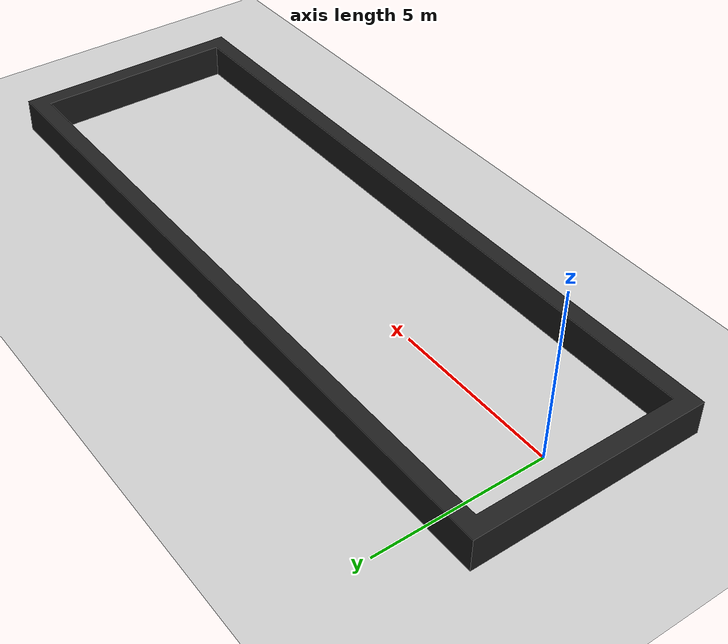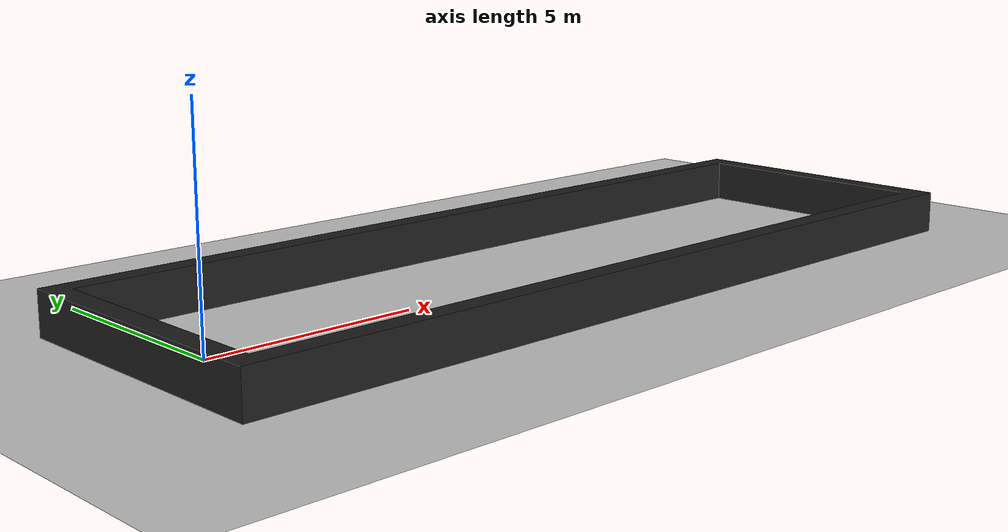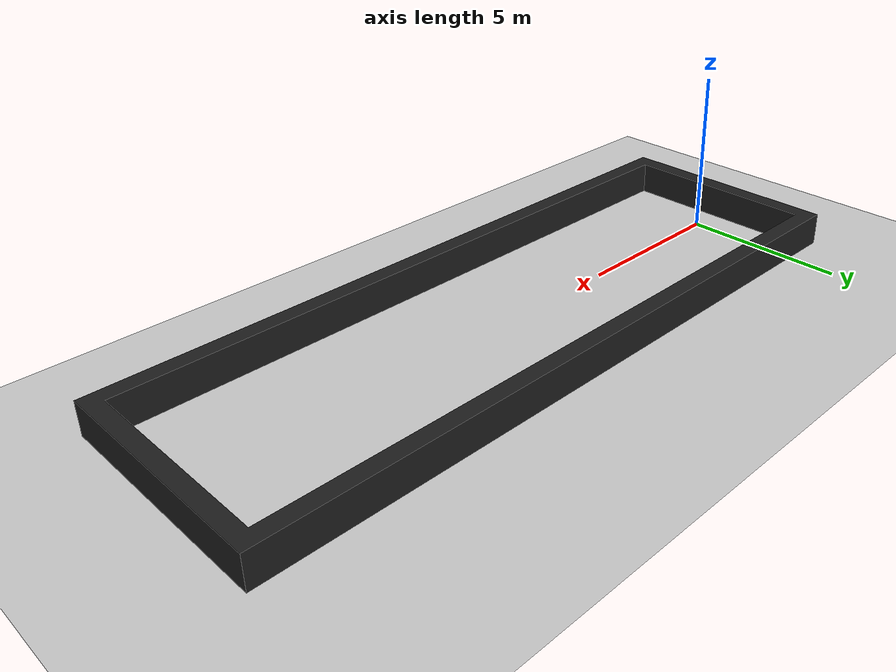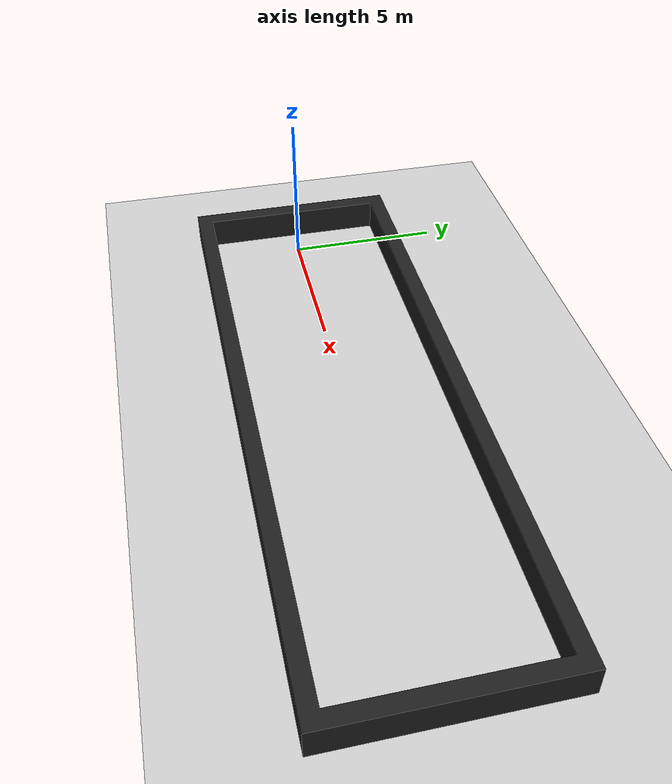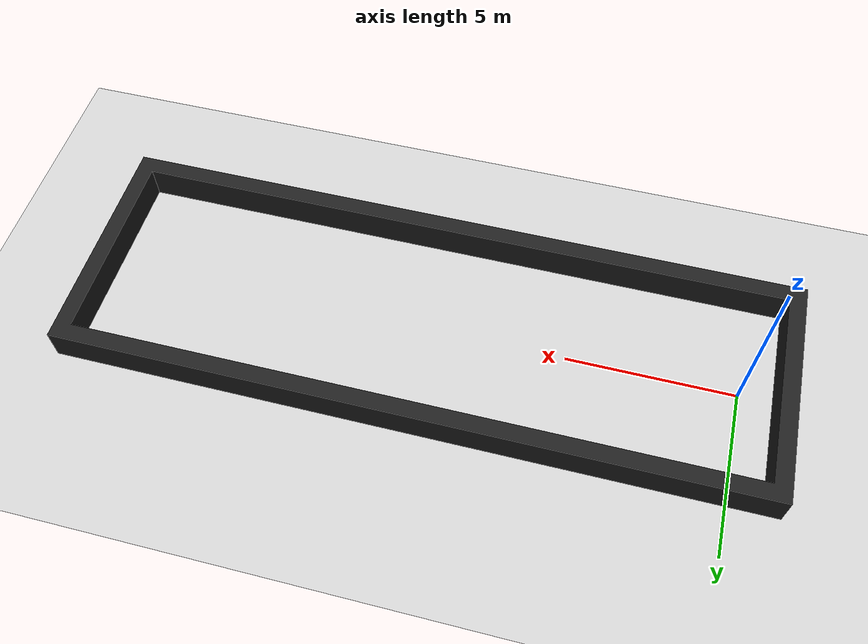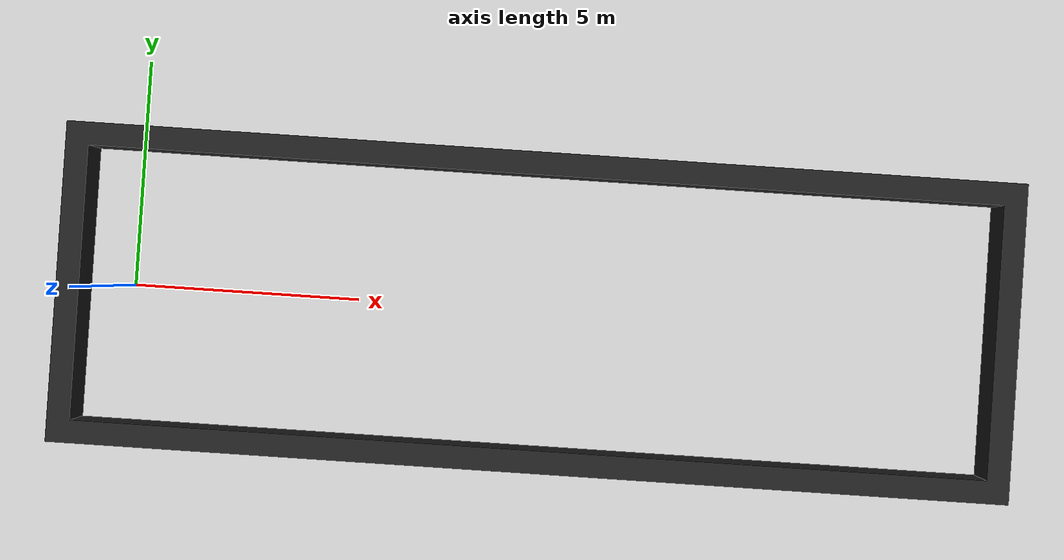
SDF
<?xml version="1.0"?>
<sdf version="1.6">
  <world name='default'>
    <!-- A global light source -->
    <include>
      <uri>model://sun</uri>
    </include>

    <!-- A ground plane -->
    <include>
      <uri>model://ground_plane</uri>
    </include>

    <physics type="ode">
      <real_time_update_rate>1000.0</real_time_update_rate>
      <max_step_size>0.001</max_step_size>
      <real_time_factor>1</real_time_factor>
      <ode>
        <solver>
          <type>quick</type>
          <iters>150</iters>
          <precon_iters>0</precon_iters>
          <sor>1.400000</sor>
          <use_dynamic_moi_rescaling>1</use_dynamic_moi_rescaling>
        </solver>
        <constraints>
          <cfm>0.00001</cfm>
          <erp>0.2</erp>
          <contact_max_correcting_vel>2000.000000</contact_max_correcting_vel>
          <contact_surface_layer>0.01000</contact_surface_layer>
        </constraints>
      </ode>
    </physics>

    <!-- Load model -->
    <include>
      <uri>model://turtlebot3_jp_world</uri>
    </include>

    <scene>
      <ambient>0.4 0.4 0.4 1</ambient>
      <background>0.7 0.7 0.7 1</background>
      <shadows>false</shadows>
    </scene>

    <gui fullscreen='0'>
      <camera name='user_camera'>
        <pose>0.0 0.0 17.0 0 1.5708 0</pose>
        <view_controller>orbit</view_controller>
      </camera>
    </gui>
  </world>
</sdf>

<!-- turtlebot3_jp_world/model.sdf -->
<sdf version='1.6'>
    <model name="wall">
    <static>true</static>
    <link name="walllink">

    <collision name="collision">
        <pose>9 0 0 0 0 -1.5708</pose>
        <geometry>
          <mesh>
            <uri>model://turtlebot3_jp_world/meshes/corridor_6x20.stl</uri>
            <scale>1 1 1</scale>
          </mesh>
        </geometry>
        <max_contacts>10</max_contacts>
        <surface>
          <bounce/>
          <friction>
            <ode/>
          </friction>
          <contact>
            <ode/>
          </contact>
        </surface>
      </collision>

      <visual name="visual">
        <pose>9 0 0 0 0 -1.5708</pose>
        <geometry>
          <mesh>
            <uri>model://turtlebot3_jp_world/meshes/corridor_6x20.stl</uri>
            <scale>1 1 1</scale>
          </mesh>
        </geometry>
        <material>
          <script>
            <uri>file://media/materials/scripts/gazebo.material</uri>
            <name>Gazebo/FlatBlack</name>
          </script>
        </material>
      </visual>

    </link>
    </model>
</sdf>
